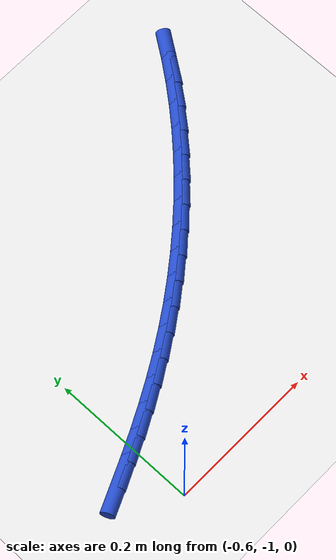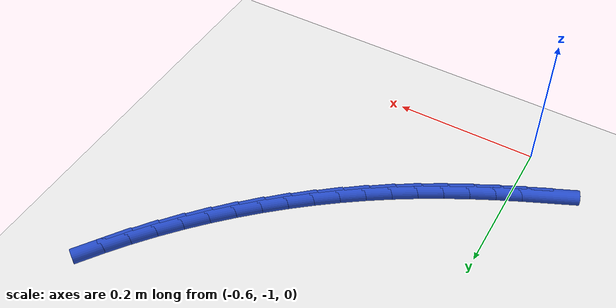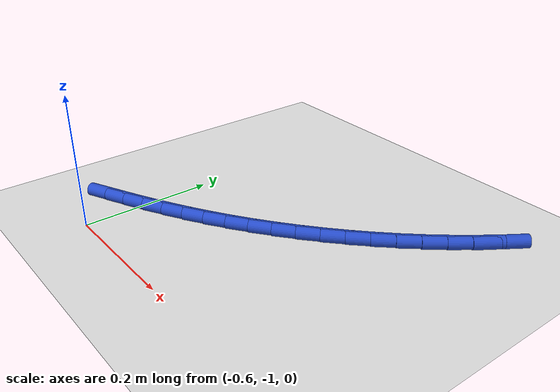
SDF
<sdf version="1.6">
 <world name="default">
  <model name="ground_plane">
   <static>1</static>
   <link name="link">
    <collision name="collision">
     <geometry><plane><normal>0 0 1</normal><size>100 100</size></plane></geometry>
     <surface><friction><ode><mu>100</mu><mu2>50</mu2></ode></friction></surface>
    </collision>
    <visual name="visual">
     <cast_shadows>0</cast_shadows>
     <geometry><plane><normal>0 0 1</normal><size>100 100</size></plane></geometry>
     <material>
      <script><uri>file://media/materials/scripts/gazebo.material</uri><name>Gazebo/WhiteGlow</name></script>
     </material>
    </visual>
   </link>
  </model>
  <model name="line">
   <link name="link_185">
    <pose>-0.6466512133495708 -0.9362554579164248 0.01 0 1.57 0.42807172358478096</pose>
    <collision name="collision">
     <geometry><cylinder><radius>0.01</radius><length>0.08</length></cylinder></geometry>
    </collision>
    <visual name="visual">
     <material>
      <script><name>Gazebo/Blue</name><uri>file://media/materials/scripts/gazebo.material</uri></script>
     </material>
     <geometry><cylinder><radius>0.01</radius><length>0.08</length></cylinder></geometry>
    </visual>
   </link>
   <link name="link_186">
    <pose>-0.6151749602181014 -0.9218931827481028 0.01 0 1.57 0.44734456933380456</pose>
    <collision name="collision">
     <geometry><cylinder><radius>0.01</radius><length>0.08</length></cylinder></geometry>
    </collision>
    <visual name="visual">
     <material>
      <script><name>Gazebo/Blue</name><uri>file://media/materials/scripts/gazebo.material</uri></script>
     </material>
     <geometry><cylinder><radius>0.01</radius><length>0.08</length></cylinder></geometry>
    </visual>
   </link>
   <link name="link_187">
    <pose>-0.5839731057105698 -0.9069230259808205 0.01 0 1.57 0.4695420207597419</pose>
    <collision name="collision">
     <geometry><cylinder><radius>0.01</radius><length>0.08</length></cylinder></geometry>
    </collision>
    <visual name="visual">
     <material>
      <script><name>Gazebo/Blue</name><uri>file://media/materials/scripts/gazebo.material</uri></script>
     </material>
     <geometry><cylinder><radius>0.01</radius><length>0.08</length></cylinder></geometry>
    </visual>
   </link>
   <link name="link_188">
    <pose>-0.5531082208109038 -0.891262495742128 0.01 0 1.57 0.49467849414028975</pose>
    <collision name="collision">
     <geometry><cylinder><radius>0.01</radius><length>0.08</length></cylinder></geometry>
    </collision>
    <visual name="visual">
     <material>
      <script><name>Gazebo/Blue</name><uri>file://media/materials/scripts/gazebo.material</uri></script>
     </material>
     <geometry><cylinder><radius>0.01</radius><length>0.08</length></cylinder></geometry>
    </visual>
   </link>
   <link name="link_189">
    <pose>-0.5226428765030317 -0.8748291001595766 0.01 0 1.57 0.5227579159567998</pose>
    <collision name="collision">
     <geometry><cylinder><radius>0.01</radius><length>0.08</length></cylinder></geometry>
    </collision>
    <visual name="visual">
     <material>
      <script><name>Gazebo/Blue</name><uri>file://media/materials/scripts/gazebo.material</uri></script>
     </material>
     <geometry><cylinder><radius>0.01</radius><length>0.08</length></cylinder></geometry>
    </visual>
   </link>
   <link name="link_190">
    <pose>-0.4926396437708809 -0.8575403473607169 0.01 0 1.57 0.5536616998396399</pose>
    <collision name="collision">
     <geometry><cylinder><radius>0.01</radius><length>0.08</length></cylinder></geometry>
    </collision>
    <visual name="visual">
     <material>
      <script><name>Gazebo/Blue</name><uri>file://media/materials/scripts/gazebo.material</uri></script>
     </material>
     <geometry><cylinder><radius>0.01</radius><length>0.08</length></cylinder></geometry>
    </visual>
   </link>
   <link name="link_191">
    <pose>-0.4631603825974102 -0.839317603588094 0.01 0 1.57 0.5858225512530456</pose>
    <collision name="collision">
     <geometry><cylinder><radius>0.01</radius><length>0.08</length></cylinder></geometry>
    </collision>
    <visual name="visual">
     <material>
      <script><name>Gazebo/Blue</name><uri>file://media/materials/scripts/gazebo.material</uri></script>
     </material>
     <geometry><cylinder><radius>0.01</radius><length>0.08</length></cylinder></geometry>
    </visual>
   </link>
   <link name="link_192">
    <pose>-0.4342564543976707 -0.8201392036171499 0.01 0 1.57 0.6181043277592921</pose>
    <collision name="collision">
     <geometry><cylinder><radius>0.01</radius><length>0.08</length></cylinder></geometry>
    </collision>
    <visual name="visual">
     <material>
      <script><name>Gazebo/Blue</name><uri>file://media/materials/scripts/gazebo.material</uri></script>
     </material>
     <geometry><cylinder><radius>0.01</radius><length>0.08</length></cylinder></geometry>
    </visual>
   </link>
   <link name="link_193">
    <pose>-0.40597120983490365 -0.8000269510832916 0.01 0 1.57 0.6505450207091824</pose>
    <collision name="collision">
     <geometry><cylinder><radius>0.01</radius><length>0.08</length></cylinder></geometry>
    </collision>
    <visual name="visual">
     <material>
      <script><name>Gazebo/Blue</name><uri>file://media/materials/scripts/gazebo.material</uri></script>
     </material>
     <geometry><cylinder><radius>0.01</radius><length>0.08</length></cylinder></geometry>
    </visual>
   </link>
   <link name="link_194">
    <pose>-0.3783477975713681 -0.7790037457428157 0.01 0 1.57 0.6832117194039705</pose>
    <collision name="collision">
     <geometry><cylinder><radius>0.01</radius><length>0.08</length></cylinder></geometry>
    </collision>
    <visual name="visual">
     <material>
      <script><name>Gazebo/Blue</name><uri>file://media/materials/scripts/gazebo.material</uri></script>
     </material>
     <geometry><cylinder><radius>0.01</radius><length>0.08</length></cylinder></geometry>
    </visual>
   </link>
   <link name="link_195">
    <pose>-0.3514293662693226 -0.7570924873520188 0.01 0 1.57 0.7161705008406161</pose>
    <collision name="collision">
     <geometry><cylinder><radius>0.01</radius><length>0.08</length></cylinder></geometry>
    </collision>
    <visual name="visual">
     <material>
      <script><name>Gazebo/Blue</name><uri>file://media/materials/scripts/gazebo.material</uri></script>
     </material>
     <geometry><cylinder><radius>0.01</radius><length>0.08</length></cylinder></geometry>
    </visual>
   </link>
   <link name="link_196">
    <pose>-0.3252590645910274 -0.7343160756671979 0.01 0 1.57 0.7494862378321874</pose>
    <collision name="collision">
     <geometry><cylinder><radius>0.01</radius><length>0.08</length></cylinder></geometry>
    </collision>
    <visual name="visual">
     <material>
      <script><name>Gazebo/Blue</name><uri>file://media/materials/scripts/gazebo.material</uri></script>
     </material>
     <geometry><cylinder><radius>0.01</radius><length>0.08</length></cylinder></geometry>
    </visual>
   </link>
   <link name="link_197">
    <pose>-0.29988004119874107 -0.7106974104446496 0.01 0 1.57 0.7832223450815312</pose>
    <collision name="collision">
     <geometry><cylinder><radius>0.01</radius><length>0.08</length></cylinder></geometry>
    </collision>
    <visual name="visual">
     <material>
      <script><name>Gazebo/Blue</name><uri>file://media/materials/scripts/gazebo.material</uri></script>
     </material>
     <geometry><cylinder><radius>0.01</radius><length>0.08</length></cylinder></geometry>
    </visual>
   </link>
   <link name="link_198">
    <pose>-0.2753354447547227 -0.6862593914406704 0.01 0 1.57 0.817440450789302</pose>
    <collision name="collision">
     <geometry><cylinder><radius>0.01</radius><length>0.08</length></cylinder></geometry>
    </collision>
    <visual name="visual">
     <material>
      <script><name>Gazebo/Blue</name><uri>file://media/materials/scripts/gazebo.material</uri></script>
     </material>
     <geometry><cylinder><radius>0.01</radius><length>0.08</length></cylinder></geometry>
    </visual>
   </link>
   <link name="link_199">
    <pose>-0.2516684239212308 -0.6610249184115562 0.01 0 1.57 0.8521999817704512</pose>
    <collision name="collision">
     <geometry><cylinder><radius>0.01</radius><length>0.08</length></cylinder></geometry>
    </collision>
    <visual name="visual">
     <material>
      <script><name>Gazebo/Blue</name><uri>file://media/materials/scripts/gazebo.material</uri></script>
     </material>
     <geometry><cylinder><radius>0.01</radius><length>0.08</length></cylinder></geometry>
    </visual>
   </link>
   <link name="link_200">
    <pose>-0.22892212736052556 -0.6350168911136049 0.01 0 1.57 0.8875576508975916</pose>
    <collision name="collision">
     <geometry><cylinder><radius>0.01</radius><length>0.08</length></cylinder></geometry>
    </collision>
    <visual name="visual">
     <material>
      <script><name>Gazebo/Blue</name><uri>file://media/materials/scripts/gazebo.material</uri></script>
     </material>
     <geometry><cylinder><radius>0.01</radius><length>0.08</length></cylinder></geometry>
    </visual>
   </link>
   <link name="link_201">
    <pose>-0.20713970373486568 -0.6082582093031128 0.01 0 1.57 0.9235668372159876</pose>
    <collision name="collision">
     <geometry><cylinder><radius>0.01</radius><length>0.08</length></cylinder></geometry>
    </collision>
    <visual name="visual">
     <material>
      <script><name>Gazebo/Blue</name><uri>file://media/materials/scripts/gazebo.material</uri></script>
     </material>
     <geometry><cylinder><radius>0.01</radius><length>0.08</length></cylinder></geometry>
    </visual>
   </link>
   <link name="link_202">
    <pose>-0.1863643017065101 -0.5807717727363764 0.01 0 1.57 0.9602768515435814</pose>
    <collision name="collision">
     <geometry><cylinder><radius>0.01</radius><length>0.08</length></cylinder></geometry>
    </collision>
    <visual name="visual">
     <material>
      <script><name>Gazebo/Blue</name><uri>file://media/materials/scripts/gazebo.material</uri></script>
     </material>
     <geometry><cylinder><radius>0.01</radius><length>0.08</length></cylinder></geometry>
    </visual>
   </link>
  </model>
 </world>
</sdf>
